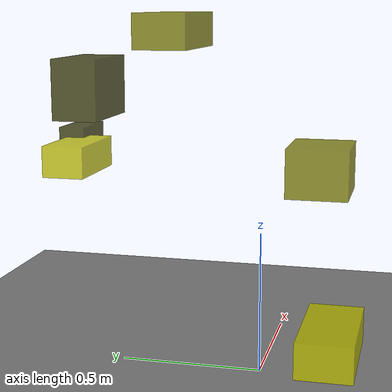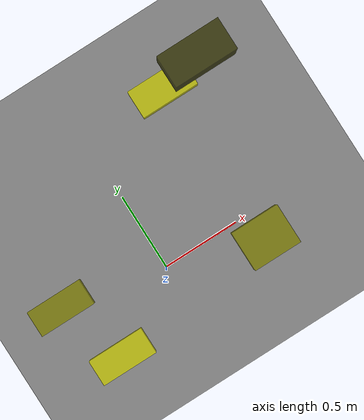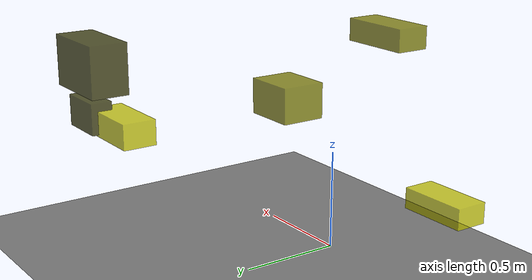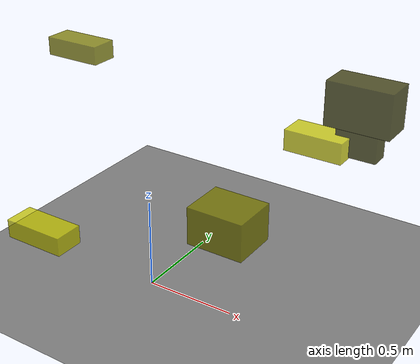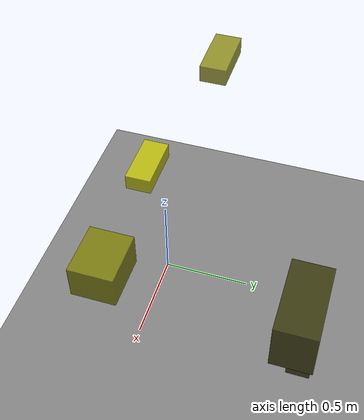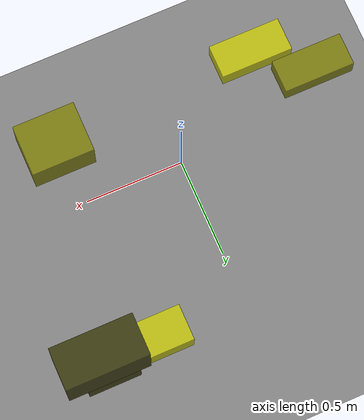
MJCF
<?xml version="1.0"?>
<mujoco model="obstacle_scene">
  <compiler angle="radian" coordinate="local"/>
  <option timestep="0.001" gravity="0 0 -9.81"/>

  <asset>
    <material name="obstacle_mat" rgba="0.8 0.8 0.0 0.8"/>
    <material name="ground_mat" rgba="0.5 0.5 0.5 1"/>
  </asset>

  <worldbody>
    <!-- Ground plane -->
    <geom name="ground" type="plane" size="3 3 0.1" material="ground_mat"/>

    <!-- Obstacles -->
    <body name="obstacle_0" pos="0.749293 0.934611 0.677595">
      <geom name="obs_0" type="box" size="0.123923 0.054622 0.079238" rgba="0.2 0.2 0.0 0.8"/>
    </body>
    <body name="obstacle_1" pos="-0.542499 0.156604 1.203398">
      <geom name="obs_1" type="box" size="0.157906 0.073011 0.048330" rgba="0.5 0.5 0.0 0.8"/>
    </body>
    <body name="obstacle_2" pos="0.534109 0.871740 0.651783">
      <geom name="obs_2" type="box" size="0.177039 0.085234 0.063499" rgba="0.8 0.8 0.0 0.8"/>
    </body>
    <body name="obstacle_3" pos="0.773112 0.904359 0.918432">
      <geom name="obs_3" type="box" size="0.192057 0.097781 0.130173" rgba="0.2 0.2 0.0 0.8"/>
    </body>
    <body name="obstacle_4" pos="0.570850 -0.137643 0.631983">
      <geom name="obs_4" type="box" size="0.148474 0.122257 0.098221" rgba="0.5 0.5 0.0 0.8"/>
    </body>
    <body name="obstacle_5" pos="-0.489401 -0.293219 0.313721">
      <geom name="obs_5" type="box" size="0.178978 0.082567 0.052912" rgba="0.8 0.8 0.0 0.8"/>
    </body>
  </worldbody>
</mujoco>
